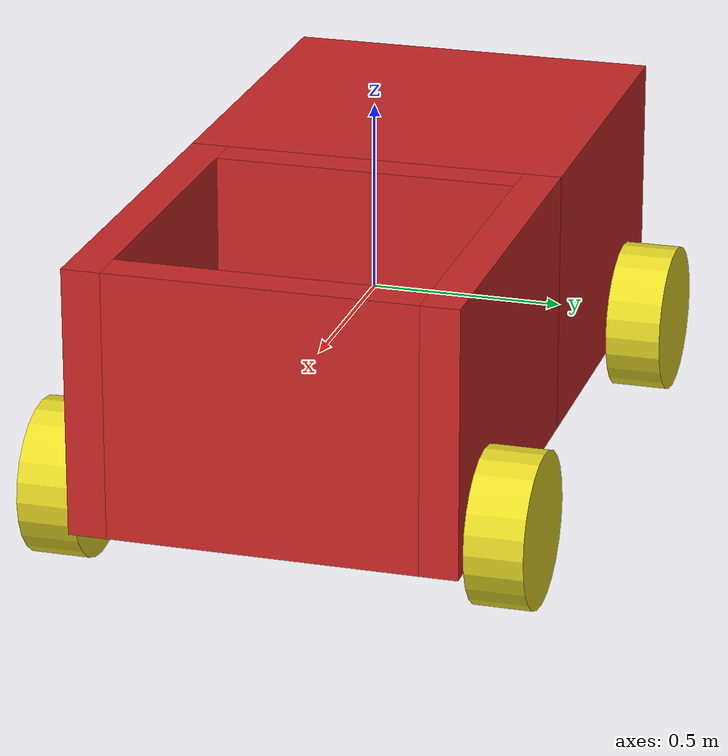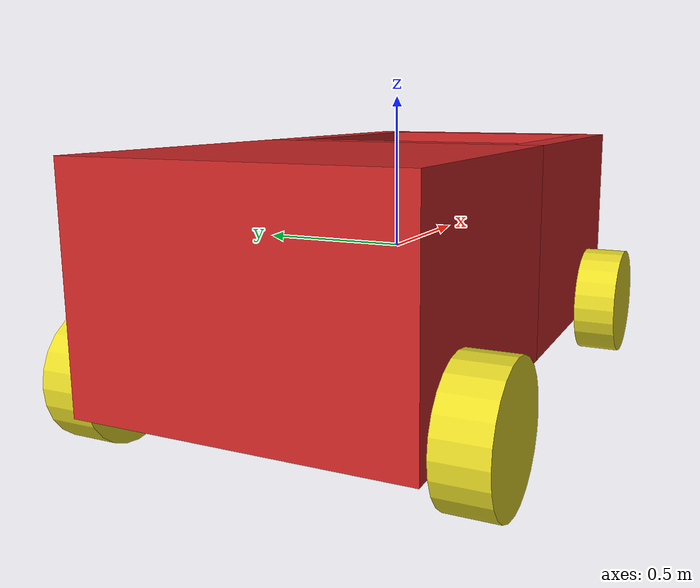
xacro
<?xml version="1.0"?>
<!-- Description of iRWB (intelegent Runway Bot) -->
<!-- Made by Phufar                              -->
<!-- Feb 2025                                    -->
<robot name="runway_bot" xmlns:xacro="http://www.ros.org/wiki/xacro">

  <!-- Body dimensions -->
  <xacro:property name="body_link_x_dim" value="2"/>
  <xacro:property name="body_link_y_dim" value="1"/>
  <xacro:property name="body_link_z_dim" value="0.7"/>
  <xacro:property name="body_inner_x" value="0.8"/>
  <xacro:property name="body_inner_y" value="0.8"/>
  <xacro:property name="body_inner_z" value="0.6"/>

  <!-- Wheel dimensions -->
  <xacro:property name="wheel_link_radius" value="0.2"/>
  <xacro:property name="wheel_link_length" value="0.15"/>
  <xacro:property name="wheel_link_z_location" value="-0.3"/>

  <!-- Material density -->
  <xacro:property name="body_density" value="2710"/>
  <xacro:property name="wheel_density" value="1500"/>

  <!-- Pi const -->
  <xacro:property name="pi_const" value="3.141592652589"/>

  <!-- Robot body and wheel mass -->
  <xacro:property name="body_mass" value="${body_density * body_link_x_dim * body_link_y_dim * body_link_z_dim}"/>
  <xacro:property name="wheel_mass" value="${
   wheel_density * pi_const * wheel_link_radius * wheel_link_radius * wheel_link_length}"/>

  <!-- Moment of inertia of the wheel -->
  <xacro:property name="Iz_wheel" value="${0.5 * wheel_mass * wheel_link_radius * wheel_link_radius}"/>
  <xacro:property name="I_wheel" value="${
   (1.0/12.0) * wheel_mass * wheel_link_radius * wheel_link_radius + wheel_link_length * wheel_link_length}"/>

  <!-- macro of the complete inertial section of wheel -->
  <xacro:macro name="inertia_wheel">
    <inertial>
      <origin rpy="0 0 0" xyz="0 0 0"/>
      <mass value="${wheel_mass}"/>
      <inertia ixx="${I_wheel}" ixy="0.0" ixz="0.0" iyy="${I_wheel}" iyz="0.0" izz="${Iz_wheel}"/>
    </inertial>
  </xacro:macro>

  <!-- Import saved gazebo settings next time we run -->
  <xacro:include filename="$(find irwb_robot_pkg)/urdf/robot.gazebo"/>

  <!--# Define all Links and Joints here #-->

  <!-- Mandatory "dummy" link and joint -->
  <link name="dummy"></link>
  <joint name="dummy_joint" type="fixed">
    <parent link="dummy"/>
    <child link="body_link"/>
  </joint>

  <!--# body_link with hole in the front #-->

  <link name="body_link">
    <visual>
      <origin rpy="0 0 0" xyz="${-1 * body_link_x_dim / 4} 0 0"/>
      <geometry>
        <box size="${body_link_x_dim / 2} ${body_link_y_dim} ${body_link_z_dim}"/>       <!-- Solid back part -->
      </geometry>
    </visual>

    <visual>
      <origin rpy="0 0 0" xyz="${(body_link_x_dim/2 - body_inner_x)/4.0} 0 0"/>       <!-- Shaded area 1 -->
      <geometry>
        <box size="0.1 ${body_inner_y} ${body_link_z_dim}"/>
      </geometry>
    </visual>

    <visual>
      <origin rpy="0 0 0" xyz="${(body_link_x_dim/2 - body_inner_x)/4 + 0.9} 0 0"/>  <!-- Shaded area 2 -->
      <geometry>
        <box size="0.1 ${body_inner_y} ${body_link_z_dim}"/>
      </geometry>
    </visual>

    <visual>
      <origin rpy="0 0 0" xyz="${body_link_x_dim / 4} ${(body_link_y_dim - 0.1)/ 2} 0"/>  <!-- Unshaded area 1 -->
      <geometry>
        <box size="${body_inner_x + 0.2} 0.1 ${body_link_z_dim}"/>
      </geometry>
    </visual>

    <visual>
      <origin rpy="0 0 0" xyz="${body_link_x_dim / 4} ${-1 * (body_link_y_dim - 0.1)/ 2} 0"/> <!-- Unshaded area 2 -->
      <geometry>
        <box size="${body_inner_x + 0.2} 0.1 ${body_link_z_dim}"/>
      </geometry>
    </visual>

    <visual>
      <origin rpy="0 0 0" xyz="${body_link_x_dim / 4} 0 ${-1 * (body_link_z_dim - 0.1)/2}"/> <!-- Base of hole -->
      <geometry>
        <box size="${body_inner_x} ${body_inner_y} 0.1"/>
      </geometry>
    </visual>

    <collision>
      <origin rpy="0 0 0" xyz="${-1 * body_link_x_dim / 4} 0 0"/>
      <geometry>
        <box size="${body_link_x_dim / 2} ${body_link_y_dim} ${body_link_z_dim}"/>
      </geometry>
    </collision>

    <collision>
      <origin rpy="0 0 0" xyz="${(body_link_x_dim/2 - body_inner_x)/4.0} 0 0"/>
      <geometry>
        <box size="0.1 ${body_inner_y} ${body_link_z_dim}"/>
      </geometry>
    </collision>

    <collision>
      <origin rpy="0 0 0" xyz="${(body_link_x_dim/2 - body_inner_x)/4 + 0.9} 0 0"/>
      <geometry>
        <box size="0.1 ${body_inner_y} ${body_link_z_dim}"/>
      </geometry>
    </collision>

    <collision>
      <origin rpy="0 0 0" xyz="${body_link_x_dim / 4} ${(body_link_y_dim - 0.1)/ 2} 0"/>
      <geometry>
        <box size="${body_inner_x + 0.2} 0.1 ${body_link_z_dim}"/>
      </geometry>
    </collision>

    <collision>
      <origin rpy="0 0 0" xyz="${body_link_x_dim / 4} ${-1 * (body_link_y_dim - 0.1)/ 2} 0"/>
      <geometry>
        <box size="${body_inner_x + 0.2} 0.1 ${body_link_z_dim}"/>
      </geometry>
    </collision>

    <collision>
      <origin rpy="0 0 0" xyz="${body_link_x_dim / 4} 0 ${-1 * (body_link_z_dim - 0.1)/2}"/>
      <geometry>
        <box size="${body_inner_x} ${body_inner_y} 0.1"/>
      </geometry>
    </collision>

    <inertial>
      <origin rpy="0 0 0" xyz="0 0 0"/>
      <mass value="${body_mass}"/>
      <inertia
      ixx="${(1.0/12.0) * body_mass * (body_link_y_dim * body_link_y_dim + body_link_z_dim * body_link_z_dim)}"
      ixy="0"
      ixz="0"
      iyy="${(1.0/12.0) * body_mass * (body_link_x_dim * body_link_x_dim + body_link_z_dim * body_link_z_dim)}"
      iyz="0"
      izz="${(1.0/12.0) * body_mass * (body_link_x_dim * body_link_x_dim + body_link_y_dim * body_link_y_dim)}"
      />
    </inertial>
  </link>

  <!--#         end of body_link         #-->

 <!--# Joint from iRWB to wheel 1 #-->
 <joint name="wheel1_joint" type="continuous">
  <parent link="body_link"/>
  <child link="wheel1_link"/>
  <origin rpy="0 0 0" xyz="
   ${-1 * (body_link_x_dim/2 - 1.2 * wheel_link_radius)}
   ${-1 * (body_link_y_dim/2 + wheel_link_length/2)}
   ${wheel_link_z_location}"/>
  <axis xyz="0 1 0"/>
  <limit effort="1000" velocity="1000"/>
  <dynamics damping="1.0" friction="1.0"/>
 </joint>

  <!--### back right wheel1 ###-->
  <link name="wheel1_link">
    <visual>
      <origin rpy="1.5708 0 0" xyz="0 0 0"/>
      <geometry>
        <cylinder length="${wheel_link_length}" radius="${wheel_link_radius}"/>
      </geometry>
    </visual>

    <collision>
      <origin rpy="1.5708 0 0" xyz="0 0 0"/>
      <geometry>
        <cylinder length="${wheel_link_length}" radius="${wheel_link_radius}"/>
      </geometry>
    </collision>

    <xacro:inertia_wheel/>
  </link>

  <!--# Joint from iRWB to wheel 2 #-->
  <joint name="wheel2_joint" type="continuous">
    <parent link="body_link"/>
    <child link="wheel2_link"/>
    <origin rpy="0 0 0" xyz="
     ${-1 * (body_link_x_dim/2 - 1.2 * wheel_link_radius)}
     ${1 * (body_link_y_dim/2 + wheel_link_length/2)}
     ${wheel_link_z_location}"/>
    <axis xyz="0 1 0"/>
    <limit effort="1000" velocity="1000"/>
    <dynamics damping="1.0" friction="1.0"/>
  </joint>

  <!--### back left wheel2 ###-->
  <link name="wheel2_link">
    <visual>
      <origin rpy="1.5708 0 0" xyz="0 0 0"/>
      <geometry>
        <cylinder length="${wheel_link_length}" radius="${wheel_link_radius}"/>
      </geometry>
    </visual>

    <collision>
      <origin rpy="1.5708 0 0" xyz="0 0 0"/>
      <geometry>
        <cylinder length="${wheel_link_length}" radius="${wheel_link_radius}"/>
      </geometry>
    </collision>

    <xacro:inertia_wheel/>
  </link>

   <!--# Joint from iRWB to wheel 3 #-->
  <joint name="wheel3_joint" type="continuous">
    <parent link="body_link"/>
    <child link="wheel3_link"/>
    <origin rpy="0 0 0" xyz="
     ${1 * (body_link_x_dim/2 - 1.2 * wheel_link_radius)}
     ${-1 * (body_link_y_dim/2 + wheel_link_length/2)}
     ${wheel_link_z_location}"/>
    <axis xyz="0 1 0"/>
    <limit effort="1000" velocity="1000"/>
    <dynamics damping="1.0" friction="1.0"/>
  </joint>

  <!--### front right wheel3 ###-->
  <link name="wheel3_link">
    <visual>
      <origin rpy="1.5708 0 0" xyz="0 0 0"/>
      <geometry>
        <cylinder length="${wheel_link_length}" radius="${wheel_link_radius}"/>
      </geometry>
    </visual>

    <collision>
      <origin rpy="1.5708 0 0" xyz="0 0 0"/>
      <geometry>
        <cylinder length="${wheel_link_length}" radius="${wheel_link_radius}"/>
      </geometry>
    </collision>

    <xacro:inertia_wheel/>
  </link>

   <!--# Joint from iRWB to wheel 4 #-->
  <joint name="wheel4_joint" type="continuous">
    <parent link="body_link"/>
    <child link="wheel4_link"/>
    <origin rpy="0 0 0" xyz="
     ${1 * (body_link_x_dim/2 - 1.2 * wheel_link_radius)}
     ${1 * (body_link_y_dim/2 + wheel_link_length/2)}
     ${wheel_link_z_location}"/>
    <axis xyz="0 1 0"/>
    <limit effort="1000" velocity="1000"/>
    <dynamics damping="1.0" friction="1.0"/>
  </joint>

  <!--### front left wheel4 ###-->
  <link name="wheel4_link">
    <visual>
      <origin rpy="1.5708 0 0" xyz="0 0 0"/>
      <geometry>
        <cylinder length="${wheel_link_length}" radius="${wheel_link_radius}"/>
      </geometry>
    </visual>

    <collision>
      <origin rpy="1.5708 0 0" xyz="0 0 0"/>
      <geometry>
        <cylinder length="${wheel_link_length}" radius="${wheel_link_radius}"/>
      </geometry>
    </collision>

    <xacro:inertia_wheel/>
  </link>

</robot>
